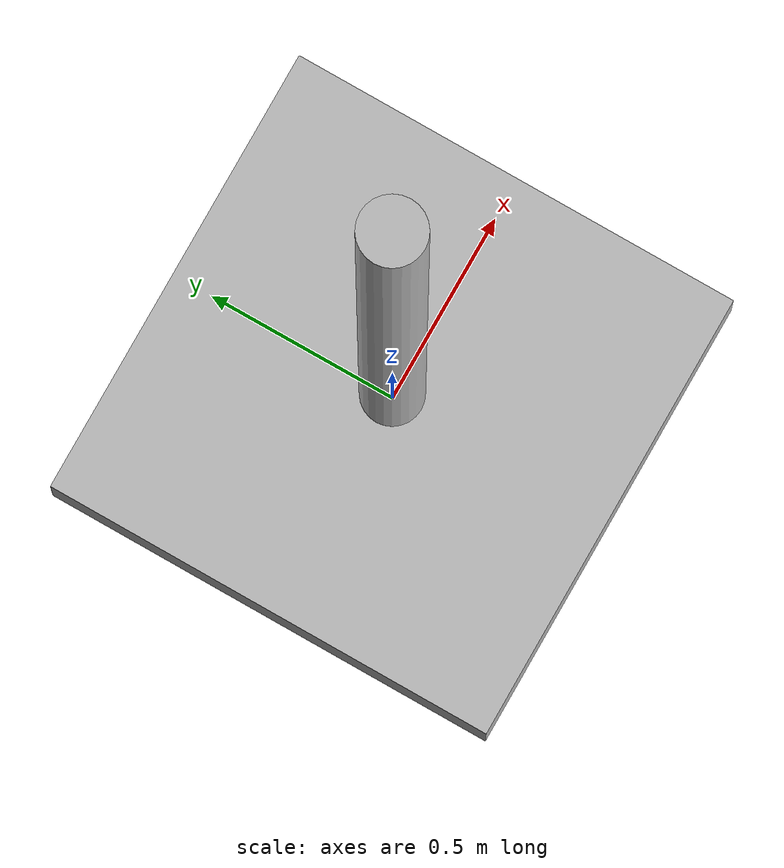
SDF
<?xml version="1.0"?>
<sdf version="1.9">
  <model name="comms_tower">
    <static>true</static>
    <link name="link">
      <!-- base -->
      <collision name="base_collision">
        <geometry><box><size>1.2 1.2 0.2</size></box></geometry>
      </collision>
      <visual name="base_visual">
        <geometry><box><size>1.2 1.2 0.2</size></box></geometry>
      </visual>

      <!-- mast -->
      <pose>0 0 0.0 0 0 0</pose>
      <collision name="mast_collision">
        <pose>0 0 1.5 0 0 0</pose>
        <geometry><cylinder><radius>0.08</radius><length>3.0</length></cylinder></geometry>
      </collision>
      <visual name="mast_visual">
        <pose>0 0 1.5 0 0 0</pose>
        <geometry><cylinder><radius>0.08</radius><length>3.0</length></cylinder></geometry>
      </visual>
    </link>
  </model>
</sdf>
